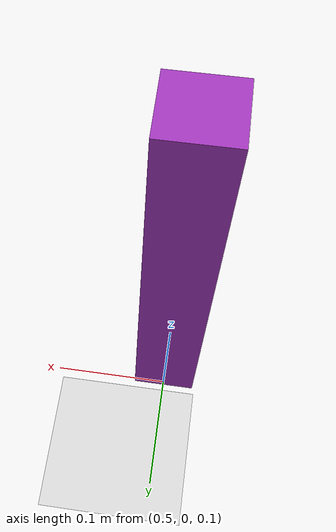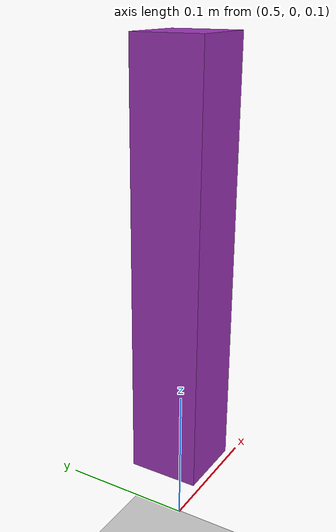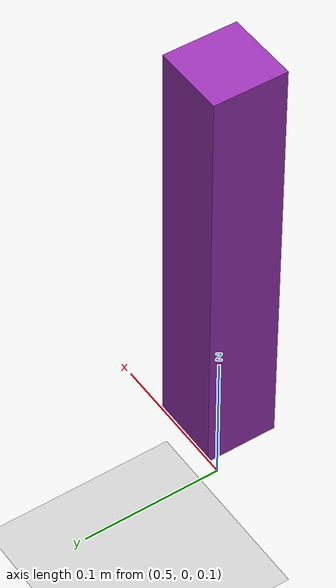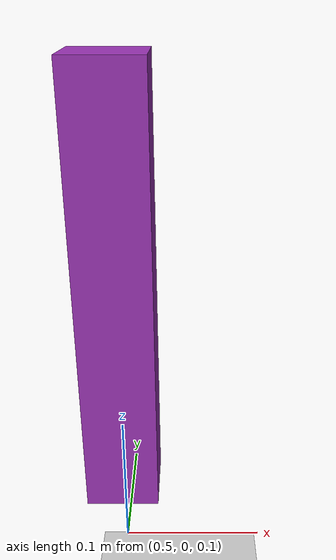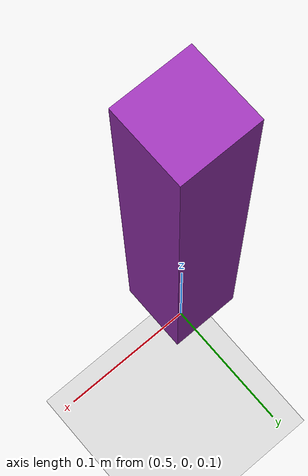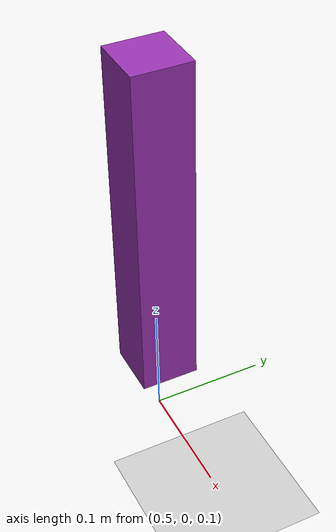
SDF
<sdf version="1.6">
 <world name="default">
  <light name="sun" type="directional">
   <pose>0 0 10 0 -0 0</pose>
   <diffuse>0.8 0.8 0.8 1</diffuse>
   <specular>0.2 0.2 0.2 1</specular>
   <attenuation>
    <range>1000</range>
    <constant>0.9</constant>
    <linear>0.01</linear>
    <quadratic>0.001</quadratic>
   </attenuation>
   <direction>-0.5 0.1 -0.9</direction>
  </light>
  <model name="ground_plane">
   <static>1</static>
   <link name="link">
    <collision name="collision">
     <geometry><plane><normal>0 0 1</normal><size>10 10</size></plane></geometry>
     <surface>
      <contact><collide_bitmask>65535</collide_bitmask></contact>
      <friction><ode><mu>100</mu><mu2>50</mu2></ode></friction>
     </surface>
    </collision>
    <visual name="visual">
     <cast_shadows>0</cast_shadows>
     <geometry><plane><normal>0 0 1</normal><size>10 10</size></plane></geometry>
     <material>
      <script><uri>file://media/materials/scripts/gazebo.material</uri><name>Gazebo/Gray</name></script>
     </material>
    </visual>
   </link>
  </model>
  <gravity>0 0 -9.8</gravity>
  <magnetic_field>6e-06 2.3e-05 -4.2e-05</magnetic_field>
  <atmosphere type="adiabatic"/>
  <physics name="default_physics" default="0" type="ode">
   <max_step_size>0.001</max_step_size>
   <real_time_factor>1</real_time_factor>
   <real_time_update_rate>1000</real_time_update_rate>
  </physics>
  <scene><ambient>0.4 0.4 0.4 1</ambient><background>0.7 0.7 0.7 1</background><shadows>1</shadows></scene>
  <spherical_coordinates>
   <surface_model>EARTH_WGS84</surface_model>
   <latitude_deg>0</latitude_deg>
   <longitude_deg>0</longitude_deg>
   <elevation>0</elevation>
   <heading_deg>0</heading_deg>
  </spherical_coordinates>
  <model name="palo">
   <pose>0.5 0 0.3 0 0 0</pose>
   <link name="link">
    <collision name="collision"><geometry><box><size>0.05 0.05 0.3</size></box></geometry></collision>
    <inertial>
     <mass>1</mass>
     <pose>0.0 0 -0.5 0 0 0</pose>
     <inertia>
      <ixx>1.0e-03</ixx>
      <ixy>0</ixy>
      <ixz>-0.0</ixz>
      <iyy>1.0e-03</iyy>
      <iyz>0.0</iyz>
      <izz>1.0e-03</izz>
     </inertia>
    </inertial>
    <visual name="visual">
     <geometry><box><size>0.05 0.05 0.3</size></box></geometry>
     <material>
      <script><uri>file://media/materials/scripts/gazebo.material</uri><name>Gazebo/Purple</name></script>
     </material>
    </visual>
   </link>
  </model>
 </world>
</sdf>
